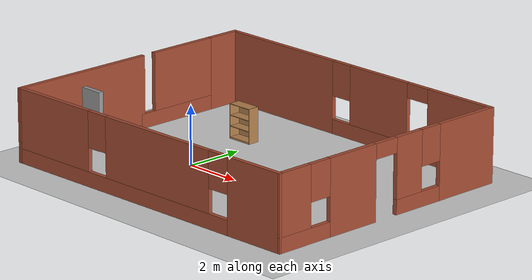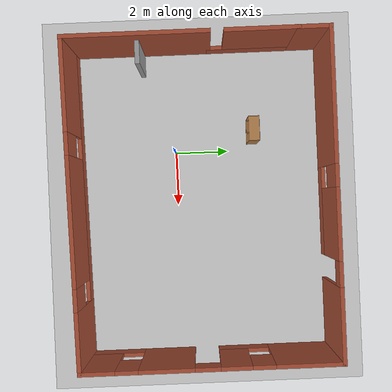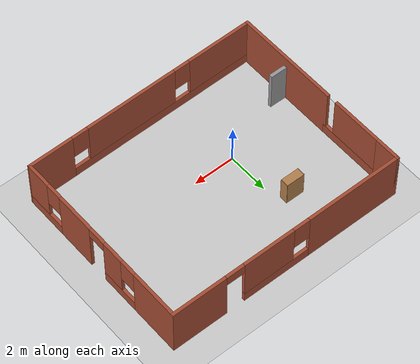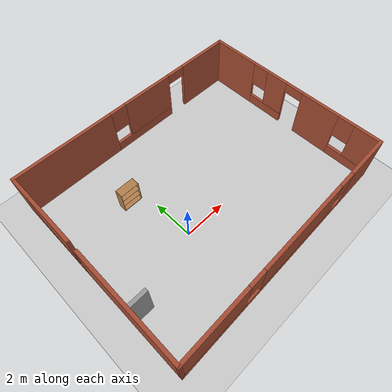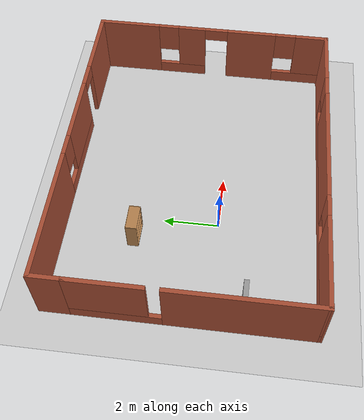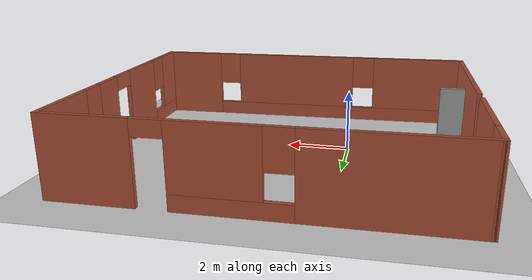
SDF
<sdf version="1.7">
 <world name="default">
  <light name="sun" type="directional">
   <pose>0 0 10 0 -0 0</pose>
   <diffuse>0.8 0.8 0.8 1</diffuse>
   <specular>0.2 0.2 0.2 1</specular>
   <attenuation>
    <range>1000</range>
    <constant>0.9</constant>
    <linear>0.01</linear>
    <quadratic>0.001</quadratic>
   </attenuation>
   <direction>-0.5 0.1 -0.9</direction>
   <spot><inner_angle>0</inner_angle><outer_angle>0</outer_angle><falloff>0</falloff></spot>
  </light>
  <model name="ground_plane">
   <static>1</static>
   <link name="link">
    <collision name="collision">
     <geometry><plane><normal>0 0 1</normal><size>100 100</size></plane></geometry>
     <surface><friction><ode><mu>100</mu><mu2>50</mu2></ode></friction></surface>
    </collision>
    <visual name="visual">
     <cast_shadows>0</cast_shadows>
     <geometry><plane><normal>0 0 1</normal><size>100 100</size></plane></geometry>
     <material>
      <script><uri>file://media/materials/scripts/gazebo.material</uri><name>Gazebo/Grey</name></script>
     </material>
    </visual>
   </link>
  </model>
  <gravity>0 0 -9.8</gravity>
  <magnetic_field>6e-06 2.3e-05 -4.2e-05</magnetic_field>
  <atmosphere type="adiabatic"/>
  <physics type="ode">
   <max_step_size>0.001</max_step_size>
   <real_time_factor>1</real_time_factor>
   <real_time_update_rate>1000</real_time_update_rate>
  </physics>
  <scene><ambient>0.4 0.4 0.4 1</ambient><background>0.7 0.7 0.7 1</background><shadows>1</shadows></scene>
  <audio><device>default</device></audio>
  <spherical_coordinates>
   <surface_model>EARTH_WGS84</surface_model>
   <latitude_deg>0</latitude_deg>
   <longitude_deg>0</longitude_deg>
   <elevation>0</elevation>
   <heading_deg>0</heading_deg>
  </spherical_coordinates>
  <model name="test">
   <pose>1.87906 0.93982 0 0 -0 0</pose>
   <link name="Door_0">
    <collision name="Door_0_Collision">
     <geometry><box><size>0.9 0.17 2</size></box></geometry>
     <pose>0 0 1 0 -0 0</pose>
    </collision>
    <visual name="Door_0_Visual">
     <pose>0 0 1 0 -0 0</pose>
     <geometry><box><size>0.9 0.17 2</size></box></geometry>
     <material>
      <script><uri>file://media/materials/scripts/gazebo.material</uri><name>Gazebo/Grey</name></script>
     </material>
    </visual>
    <pose>-5.35342 -2.08968 0 0 -0 0</pose>
   </link>
   <link name="Wall_12">
    <collision name="Wall_12_Collision">
     <geometry><box><size>5.25 0.15 2.5</size></box></geometry>
     <pose>0 0 1.25 0 -0 0</pose>
    </collision>
    <visual name="Wall_12_Visual">
     <pose>0 0 1.25 0 -0 0</pose>
     <geometry><box><size>5.25 0.15 2.5</size></box></geometry>
     <material>
      <script><uri>file://media/materials/scripts/gazebo.material</uri><name>Gazebo/Bricks</name></script>
      <ambient>1 1 1 1</ambient>
     </material>
     <meta><layer>0</layer></meta>
    </visual>
    <pose>-5.8 -2.09936 0 0 -0 1.5708</pose>
   </link>
   <link name="Wall_13">
    <pose>-5.8 2.00064 0 0 -0 1.5708</pose>
    <visual name="Wall_13_Visual_0">
     <pose>0 0 0.25 0 -0 0</pose>
     <geometry><box><size>3.25 0.15 0.5</size></box></geometry>
     <material>
      <script><uri>file://media/materials/scripts/gazebo.material</uri><name>Gazebo/Bricks</name></script>
      <ambient>1 1 1 1</ambient>
     </material>
     <meta><layer>0</layer></meta>
    </visual>
    <collision name="Wall_13_Collision_0">
     <geometry><box><size>3.25 0.15 0.5</size></box></geometry>
     <pose>0 0 0.25 0 -0 0</pose>
    </collision>
    <visual name="Wall_13_Visual_1">
     <pose>0.297348 0 1.5 0 -0 0</pose>
     <geometry><box><size>2.6553 0.15 2</size></box></geometry>
     <material>
      <script><uri>file://media/materials/scripts/gazebo.material</uri><name>Gazebo/Bricks</name></script>
      <ambient>1 1 1 1</ambient>
     </material>
     <meta><layer>0</layer></meta>
    </visual>
    <collision name="Wall_13_Collision_1">
     <geometry><box><size>2.6553 0.15 2</size></box></geometry>
     <pose>0.297348 0 1.5 0 -0 0</pose>
    </collision>
   </link>
   <link name="Wall_14">
    <collision name="Wall_14_Collision">
     <geometry><box><size>1.25 0.15 2.5</size></box></geometry>
     <pose>0 0 1.25 0 -0 0</pose>
    </collision>
    <visual name="Wall_14_Visual">
     <pose>0 0 1.25 0 -0 0</pose>
     <geometry><box><size>1.25 0.15 2.5</size></box></geometry>
     <material>
      <script><uri>file://media/materials/scripts/gazebo.material</uri><name>Gazebo/Bricks</name></script>
      <ambient>1 1 1 1</ambient>
     </material>
     <meta><layer>0</layer></meta>
    </visual>
    <pose>-5.8 4.10064 0 0 -0 1.5708</pose>
   </link>
   <link name="Wall_15">
    <pose>-0 4.65064 0 0 -0 0</pose>
    <visual name="Wall_15_Visual_0">
     <pose>-3.47339 0 1.25 0 -0 0</pose>
     <geometry><box><size>4.80322 0.15 2.5</size></box></geometry>
     <material>
      <script><uri>file://media/materials/scripts/gazebo.material</uri><name>Gazebo/Bricks</name></script>
      <ambient>1 1 1 1</ambient>
     </material>
     <meta><layer>0</layer></meta>
    </visual>
    <collision name="Wall_15_Collision_0">
     <geometry><box><size>4.80322 0.15 2.5</size></box></geometry>
     <pose>-3.47339 0 1.25 0 -0 0</pose>
    </collision>
    <visual name="Wall_15_Visual_1">
     <pose>4.52902 0 1.25 0 -0 0</pose>
     <geometry><box><size>2.69196 0.15 2.5</size></box></geometry>
     <material>
      <script><uri>file://media/materials/scripts/gazebo.material</uri><name>Gazebo/Bricks</name></script>
      <ambient>1 1 1 1</ambient>
     </material>
     <meta><layer>0</layer></meta>
    </visual>
    <collision name="Wall_15_Collision_1">
     <geometry><box><size>2.69196 0.15 2.5</size></box></geometry>
     <pose>4.52902 0 1.25 0 -0 0</pose>
    </collision>
    <visual name="Wall_15_Visual_2">
     <pose>0.605629 0 0.25 0 -0 0</pose>
     <geometry><box><size>3.35483 0.15 0.5</size></box></geometry>
     <material>
      <script><uri>file://media/materials/scripts/gazebo.material</uri><name>Gazebo/Bricks</name></script>
      <ambient>1 1 1 1</ambient>
     </material>
     <meta><layer>0</layer></meta>
    </visual>
    <collision name="Wall_15_Collision_2">
     <geometry><box><size>3.35483 0.15 0.5</size></box></geometry>
     <pose>0.605629 0 0.25 0 -0 0</pose>
    </collision>
    <visual name="Wall_15_Visual_3">
     <pose>1.00563 0 1.5 0 -0 0</pose>
     <geometry><box><size>2.55483 0.15 2</size></box></geometry>
     <material>
      <script><uri>file://media/materials/scripts/gazebo.material</uri><name>Gazebo/Bricks</name></script>
      <ambient>1 1 1 1</ambient>
     </material>
     <meta><layer>0</layer></meta>
    </visual>
    <collision name="Wall_15_Collision_3">
     <geometry><box><size>2.55483 0.15 2</size></box></geometry>
     <pose>1.00563 0 1.5 0 -0 0</pose>
    </collision>
    <visual name="Wall_15_Visual_4">
     <pose>-0.671784 0 1.9 0 -0 0</pose>
     <geometry><box><size>0.8 0.15 1.2</size></box></geometry>
     <material>
      <script><uri>file://media/materials/scripts/gazebo.material</uri><name>Gazebo/Bricks</name></script>
      <ambient>1 1 1 1</ambient>
     </material>
     <meta><layer>0</layer></meta>
    </visual>
    <collision name="Wall_15_Collision_4">
     <geometry><box><size>0.8 0.15 1.2</size></box></geometry>
     <pose>-0.671784 0 1.9 0 -0 0</pose>
    </collision>
    <visual name="Wall_15_Visual_5">
     <pose>2.73304 0 2.25 0 -0 0</pose>
     <geometry><box><size>0.9 0.15 0.5</size></box></geometry>
     <material>
      <script><uri>file://media/materials/scripts/gazebo.material</uri><name>Gazebo/Bricks</name></script>
      <ambient>1 1 1 1</ambient>
     </material>
     <meta><layer>0</layer></meta>
    </visual>
    <collision name="Wall_15_Collision_5">
     <geometry><box><size>0.9 0.15 0.5</size></box></geometry>
     <pose>2.73304 0 2.25 0 -0 0</pose>
    </collision>
   </link>
   <link name="Wall_16">
    <pose>5.8 0.100641 0 0 -0 -1.5708</pose>
    <visual name="Wall_16_Visual_0">
     <pose>-3.41235 0 1.25 0 -0 0</pose>
     <geometry><box><size>2.42529 0.15 2.5</size></box></geometry>
     <material>
      <script><uri>file://media/materials/scripts/gazebo.material</uri><name>Gazebo/Bricks</name></script>
      <ambient>1 1 1 1</ambient>
     </material>
     <meta><layer>0</layer></meta>
    </visual>
    <collision name="Wall_16_Collision_0">
     <geometry><box><size>2.42529 0.15 2.5</size></box></geometry>
     <pose>-3.41235 0 1.25 0 -0 0</pose>
    </collision>
    <visual name="Wall_16_Visual_1">
     <pose>1.56362 0 1.25 0 -0 0</pose>
     <geometry><box><size>1.94302 0.15 2.5</size></box></geometry>
     <material>
      <script><uri>file://media/materials/scripts/gazebo.material</uri><name>Gazebo/Bricks</name></script>
      <ambient>1 1 1 1</ambient>
     </material>
     <meta><layer>0</layer></meta>
    </visual>
    <collision name="Wall_16_Collision_1">
     <geometry><box><size>1.94302 0.15 2.5</size></box></geometry>
     <pose>1.56362 0 1.25 0 -0 0</pose>
    </collision>
    <visual name="Wall_16_Visual_2">
     <pose>-1.2538 0 0.25 0 -0 0</pose>
     <geometry><box><size>1.89182 0.15 0.5</size></box></geometry>
     <material>
      <script><uri>file://media/materials/scripts/gazebo.material</uri><name>Gazebo/Bricks</name></script>
      <ambient>1 1 1 1</ambient>
     </material>
     <meta><layer>0</layer></meta>
    </visual>
    <collision name="Wall_16_Collision_2">
     <geometry><box><size>1.89182 0.15 0.5</size></box></geometry>
     <pose>-1.2538 0 0.25 0 -0 0</pose>
    </collision>
    <visual name="Wall_16_Visual_3">
     <pose>3.58006 0 0.25 0 -0 0</pose>
     <geometry><box><size>2.08987 0.15 0.5</size></box></geometry>
     <material>
      <script><uri>file://media/materials/scripts/gazebo.material</uri><name>Gazebo/Bricks</name></script>
      <ambient>1 1 1 1</ambient>
     </material>
     <meta><layer>0</layer></meta>
    </visual>
    <collision name="Wall_16_Collision_3">
     <geometry><box><size>2.08987 0.15 0.5</size></box></geometry>
     <pose>3.58006 0 0.25 0 -0 0</pose>
    </collision>
    <visual name="Wall_16_Visual_4">
     <pose>-0.853799 0 1.5 0 -0 0</pose>
     <geometry><box><size>1.09181 0.15 2</size></box></geometry>
     <material>
      <script><uri>file://media/materials/scripts/gazebo.material</uri><name>Gazebo/Bricks</name></script>
      <ambient>1 1 1 1</ambient>
     </material>
     <meta><layer>0</layer></meta>
    </visual>
    <collision name="Wall_16_Collision_4">
     <geometry><box><size>1.09181 0.15 2</size></box></geometry>
     <pose>-0.853799 0 1.5 0 -0 0</pose>
    </collision>
    <visual name="Wall_16_Visual_5">
     <pose>-0.853799 0 1.5 0 -0 0</pose>
     <geometry><box><size>1.09181 0.15 2</size></box></geometry>
     <material>
      <script><uri>file://media/materials/scripts/gazebo.material</uri><name>Gazebo/Bricks</name></script>
      <ambient>1 1 1 1</ambient>
     </material>
     <meta><layer>0</layer></meta>
    </visual>
    <collision name="Wall_16_Collision_5">
     <geometry><box><size>1.09181 0.15 2</size></box></geometry>
     <pose>-0.853799 0 1.5 0 -0 0</pose>
    </collision>
    <visual name="Wall_16_Visual_6">
     <pose>3.98007 0 1.5 0 -0 0</pose>
     <geometry><box><size>1.28987 0.15 2</size></box></geometry>
     <material>
      <script><uri>file://media/materials/scripts/gazebo.material</uri><name>Gazebo/Bricks</name></script>
      <ambient>1 1 1 1</ambient>
     </material>
     <meta><layer>0</layer></meta>
    </visual>
    <collision name="Wall_16_Collision_6">
     <geometry><box><size>1.28987 0.15 2</size></box></geometry>
     <pose>3.98007 0 1.5 0 -0 0</pose>
    </collision>
    <visual name="Wall_16_Visual_7">
     <pose>-1.79971 0 1.9 0 -0 0</pose>
     <geometry><box><size>0.8 0.15 1.2</size></box></geometry>
     <material>
      <script><uri>file://media/materials/scripts/gazebo.material</uri><name>Gazebo/Bricks</name></script>
      <ambient>1 1 1 1</ambient>
     </material>
     <meta><layer>0</layer></meta>
    </visual>
    <collision name="Wall_16_Collision_7">
     <geometry><box><size>0.8 0.15 1.2</size></box></geometry>
     <pose>-1.79971 0 1.9 0 -0 0</pose>
    </collision>
    <visual name="Wall_16_Visual_8">
     <pose>2.93513 0 1.9 0 -0 0</pose>
     <geometry><box><size>0.8 0.15 1.2</size></box></geometry>
     <material>
      <script><uri>file://media/materials/scripts/gazebo.material</uri><name>Gazebo/Bricks</name></script>
      <ambient>1 1 1 1</ambient>
     </material>
     <meta><layer>0</layer></meta>
    </visual>
    <collision name="Wall_16_Collision_8">
     <geometry><box><size>0.8 0.15 1.2</size></box></geometry>
     <pose>2.93513 0 1.9 0 -0 0</pose>
    </collision>
    <visual name="Wall_16_Visual_9">
     <pose>0.142109 0 2.25 0 -0 0</pose>
     <geometry><box><size>0.9 0.15 0.5</size></box></geometry>
     <material>
      <script><uri>file://media/materials/scripts/gazebo.material</uri><name>Gazebo/Bricks</name></script>
      <ambient>1 1 1 1</ambient>
     </material>
     <meta><layer>0</layer></meta>
    </visual>
    <collision name="Wall_16_Collision_9">
     <geometry><box><size>0.9 0.15 0.5</size></box></geometry>
     <pose>0.142109 0 2.25 0 -0 0</pose>
    </collision>
    <visual name="Wall_16_Visual_10">
     <pose>0.142109 0 2.25 0 -0 0</pose>
     <geometry><box><size>0.9 0.15 0.5</size></box></geometry>
     <material>
      <script><uri>file://media/materials/scripts/gazebo.material</uri><name>Gazebo/Bricks</name></script>
      <ambient>1 1 1 1</ambient>
     </material>
     <meta><layer>0</layer></meta>
    </visual>
    <collision name="Wall_16_Collision_10">
     <geometry><box><size>0.9 0.15 0.5</size></box></geometry>
     <pose>0.142109 0 2.25 0 -0 0</pose>
    </collision>
   </link>
   <link name="Wall_17">
    <pose>-0 -4.54936 0 0 -0 -3.12435</pose>
    <visual name="Wall_17_Visual_0">
     <pose>-4.77078 0 1.25 0 -0 0</pose>
     <geometry><box><size>2.21017 0.15 2.5</size></box></geometry>
     <material>
      <script><uri>file://media/materials/scripts/gazebo.material</uri><name>Gazebo/Bricks</name></script>
      <ambient>1 1 1 1</ambient>
     </material>
     <meta><layer>0</layer></meta>
    </visual>
    <collision name="Wall_17_Collision_0">
     <geometry><box><size>2.21017 0.15 2.5</size></box></geometry>
     <pose>-4.77078 0 1.25 0 -0 0</pose>
    </collision>
    <visual name="Wall_17_Visual_1">
     <pose>1.10509 0 0.25 0 -0 0</pose>
     <geometry><box><size>9.54155 0.15 0.5</size></box></geometry>
     <material>
      <script><uri>file://media/materials/scripts/gazebo.material</uri><name>Gazebo/Bricks</name></script>
      <ambient>1 1 1 1</ambient>
     </material>
     <meta><layer>0</layer></meta>
    </visual>
    <collision name="Wall_17_Collision_1">
     <geometry><box><size>9.54155 0.15 0.5</size></box></geometry>
     <pose>1.10509 0 0.25 0 -0 0</pose>
    </collision>
    <visual name="Wall_17_Visual_2">
     <pose>-0.567549 0 1.5 0 -0 0</pose>
     <geometry><box><size>4.59629 0.15 2</size></box></geometry>
     <material>
      <script><uri>file://media/materials/scripts/gazebo.material</uri><name>Gazebo/Bricks</name></script>
      <ambient>1 1 1 1</ambient>
     </material>
     <meta><layer>0</layer></meta>
    </visual>
    <collision name="Wall_17_Collision_2">
     <geometry><box><size>4.59629 0.15 2</size></box></geometry>
     <pose>-0.567549 0 1.5 0 -0 0</pose>
    </collision>
    <visual name="Wall_17_Visual_3">
     <pose>4.20323 0 1.5 0 -0 0</pose>
     <geometry><box><size>3.34527 0.15 2</size></box></geometry>
     <material>
      <script><uri>file://media/materials/scripts/gazebo.material</uri><name>Gazebo/Bricks</name></script>
      <ambient>1 1 1 1</ambient>
     </material>
     <meta><layer>0</layer></meta>
    </visual>
    <collision name="Wall_17_Collision_3">
     <geometry><box><size>3.34527 0.15 2</size></box></geometry>
     <pose>4.20323 0 1.5 0 -0 0</pose>
    </collision>
    <visual name="Wall_17_Visual_4">
     <pose>-3.26569 0 1.9 0 -0 0</pose>
     <geometry><box><size>0.8 0.15 1.2</size></box></geometry>
     <material>
      <script><uri>file://media/materials/scripts/gazebo.material</uri><name>Gazebo/Bricks</name></script>
      <ambient>1 1 1 1</ambient>
     </material>
     <meta><layer>0</layer></meta>
    </visual>
    <collision name="Wall_17_Collision_4">
     <geometry><box><size>0.8 0.15 1.2</size></box></geometry>
     <pose>-3.26569 0 1.9 0 -0 0</pose>
    </collision>
    <visual name="Wall_17_Visual_5">
     <pose>2.1306 0 1.9 0 -0 0</pose>
     <geometry><box><size>0.8 0.15 1.2</size></box></geometry>
     <material>
      <script><uri>file://media/materials/scripts/gazebo.material</uri><name>Gazebo/Bricks</name></script>
      <ambient>1 1 1 1</ambient>
     </material>
     <meta><layer>0</layer></meta>
    </visual>
    <collision name="Wall_17_Collision_5">
     <geometry><box><size>0.8 0.15 1.2</size></box></geometry>
     <pose>2.1306 0 1.9 0 -0 0</pose>
    </collision>
   </link>
   <static>1</static>
  </model>
  <model name="bookshelf">
   <static>1</static>
   <link name="link">
    <inertial><mass>1</mass></inertial>
    <collision name="back">
     <pose>0 0.005 0.6 0 -0 0</pose>
     <geometry><box><size>0.9 0.01 1.2</size></box></geometry>
    </collision>
    <visual name="visual1">
     <pose>0 0.005 0.6 0 -0 0</pose>
     <geometry><box><size>0.9 0.01 1.2</size></box></geometry>
     <material>
      <script><uri>file://media/materials/scripts/gazebo.material</uri><name>Gazebo/Wood</name></script>
     </material>
    </visual>
    <collision name="left_side">
     <pose>0.45 -0.195 0.6 0 -0 0</pose>
     <geometry><box><size>0.02 0.4 1.2</size></box></geometry>
    </collision>
    <visual name="visual2">
     <pose>0.45 -0.195 0.6 0 -0 0</pose>
     <geometry><box><size>0.02 0.4 1.2</size></box></geometry>
     <material>
      <script><uri>file://media/materials/scripts/gazebo.material</uri><name>Gazebo/Wood</name></script>
     </material>
    </visual>
    <collision name="right_side">
     <pose>-0.45 -0.195 0.6 0 -0 0</pose>
     <geometry><box><size>0.02 0.4 1.2</size></box></geometry>
    </collision>
    <visual name="visual3">
     <pose>-0.45 -0.195 0.6 0 -0 0</pose>
     <geometry><box><size>0.02 0.4 1.2</size></box></geometry>
     <material>
      <script><uri>file://media/materials/scripts/gazebo.material</uri><name>Gazebo/Wood</name></script>
     </material>
    </visual>
    <collision name="bottom">
     <pose>0 -0.195 0.03 0 -0 0</pose>
     <geometry><box><size>0.88 0.4 0.06</size></box></geometry>
    </collision>
    <visual name="visual4">
     <pose>0 -0.195 0.03 0 -0 0</pose>
     <geometry><box><size>0.88 0.4 0.06</size></box></geometry>
     <material>
      <script><uri>file://media/materials/scripts/gazebo.material</uri><name>Gazebo/Wood</name></script>
     </material>
    </visual>
    <collision name="top">
     <pose>0 -0.195 1.19 0 -0 0</pose>
     <geometry><box><size>0.88 0.4 0.02</size></box></geometry>
    </collision>
    <visual name="visual5">
     <pose>0 -0.195 1.19 0 -0 0</pose>
     <geometry><box><size>0.88 0.4 0.02</size></box></geometry>
     <material>
      <script><uri>file://media/materials/scripts/gazebo.material</uri><name>Gazebo/Wood</name></script>
     </material>
    </visual>
    <collision name="low_shelf">
     <pose>0 -0.195 0.43 0 -0 0</pose>
     <geometry><box><size>0.88 0.4 0.02</size></box></geometry>
    </collision>
    <visual name="visual6">
     <pose>0 -0.195 0.43 0 -0 0</pose>
     <geometry><box><size>0.88 0.4 0.02</size></box></geometry>
     <material>
      <script><uri>file://media/materials/scripts/gazebo.material</uri><name>Gazebo/Wood</name></script>
     </material>
    </visual>
    <collision name="high_shelf">
     <pose>0 -0.195 0.8 0 -0 0</pose>
     <geometry><box><size>0.88 0.4 0.02</size></box></geometry>
    </collision>
    <visual name="visual7">
     <pose>0 -0.195 0.8 0 -0 0</pose>
     <geometry><box><size>0.88 0.4 0.02</size></box></geometry>
     <material>
      <script><uri>file://media/materials/scripts/gazebo.material</uri><name>Gazebo/Wood</name></script>
     </material>
    </visual>
   </link>
   <pose>-0.699128 3.14867 0 0 -0 0</pose>
  </model>
 </world>
</sdf>
